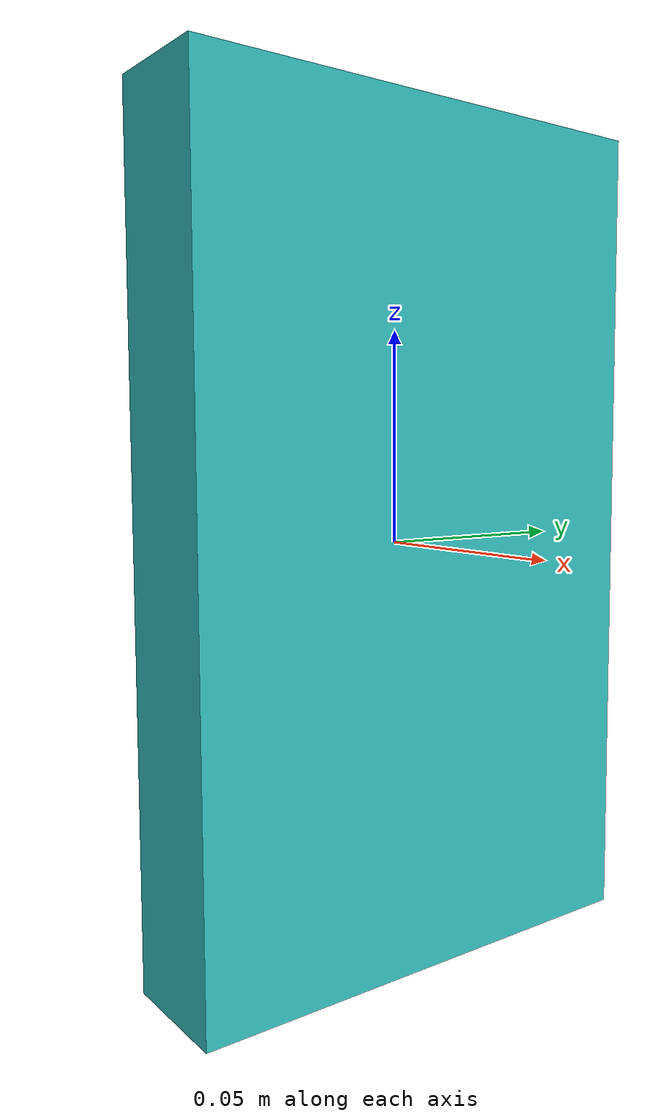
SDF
<?xml version='1.0'?>
<sdf version='1.6'>
  <model name='turquoise_book'>
    <link name='body'>
      <inertial>
        <mass>1</mass>
        <inertia>
          <ixx>0.166667</ixx>
          <ixy>0</ixy>
          <ixz>0</ixz>
          <iyy>0.166667</iyy>
          <iyz>0</iyz>
          <izz>0.166667</izz>
        </inertia>
        <pose>0 0 0 0 -0 0</pose>
      </inertial>

      <visual name='turquoise_book_visual'>
	<pose>0 0 0 0 0 0</pose>
	<geometry>
          <box>
            <size>0.03 0.12 0.2</size>
          </box>
        </geometry>
        <material>
          <script>
            <uri>file://media/materials/scripts/gazebo.material</uri>
            <name>Gazebo/Turquoise</name>
          </script>
        </material>
      </visual>
      <collision name='turquoise_book_collision'>
        <laser_retro>0</laser_retro>
        <max_contacts>10</max_contacts>
        <pose frame=''>0 0 0 0 -0 0</pose>
        <geometry>
          <box>
            <size>0.03 0.12 0.2</size>
          </box>
        </geometry>
      </collision>
    </link>
  </model>
</sdf>
